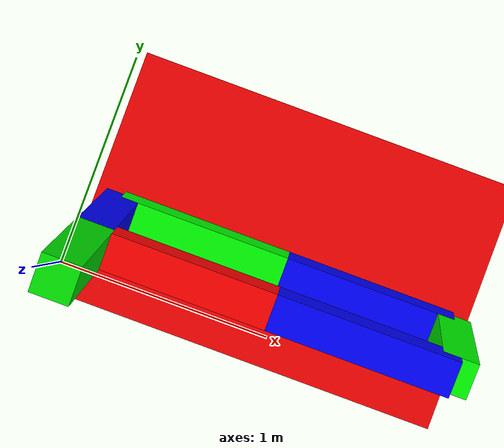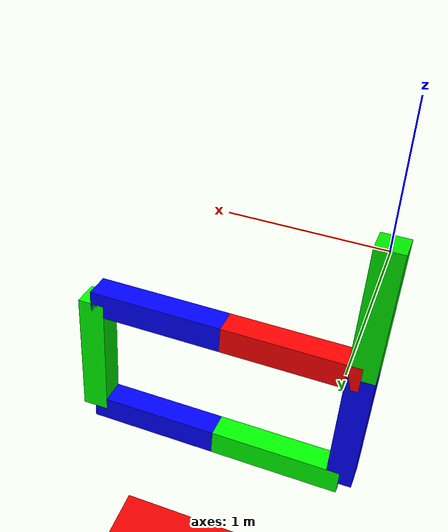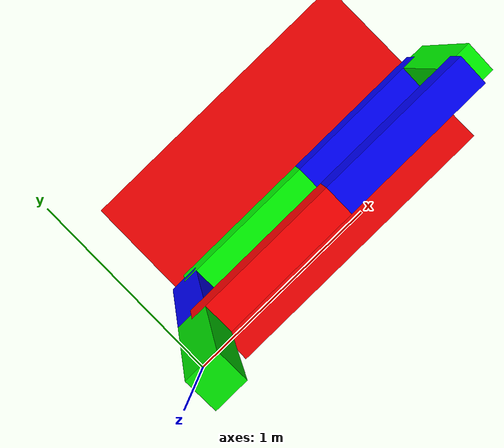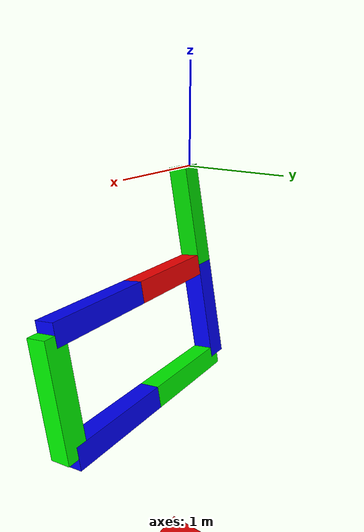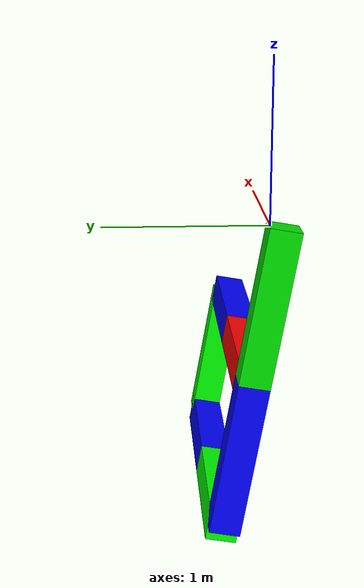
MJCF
<mujoco>
    <option timestep="0.001" integrator="RK4">
		<flag gravity="enable" contact="disable"/>
	</option>
    <worldbody>
        <light diffuse=".5 .5 .5" pos="0 0 3" dir="0 0 -1"/>
        <geom type="plane" pos="0 0 -5" size="3 3 0.1" rgba=".9 0 0 1"/>
        <body name="body0" pos="0 0 -0.5" euler="10 0 0">
            <joint name="joint0" type="ball" pos="0 0 0.5"/>
            <geom name="box0" type="box" size="0.1 0.1 0.5" rgba="0 .9 0 1" mass="1"/>
            <body name="body1" pos="0 0 -1" euler="0 0 0">
                <joint name="joint1" type="ball" pos="0 0 0.5"/>
                <geom name="box1" type="box" size="0.1 0.1 0.5" rgba="0 0 1 1" mass="1"/>
                <body name="body2" pos="0.5 0 -0.5" euler="0 -90 0">
                    <joint name="joint2" type="ball" pos="0 0 0.5"/>
                    <geom name="box2" type="box" size="0.1 0.1 0.5" rgba="0 1 0 1" mass="1"/>
                    <body name="body3" pos="0 0 -1" euler="0 0 0">
                        <joint name="joint3" type="ball" pos="0 0 0.5"/>
                        <geom name="box3" type="box" size="0.1 0.1 0.5" rgba="0 0 1 1" mass="1"/>
                        <body name="body4" pos="0.5 0 -0.5" euler="0 -90 0">
                            <joint name="joint4" type="ball" pos="0 0 0.5"/>
                            <geom name="box4" type="box" size="0.1 0.1 0.5" rgba="0 1 0 1" mass="1"/>
                            <body name="body5" pos="0.5 0 -0.5" euler="0 -90 0">
                                <joint name="joint5" type="ball" pos="0 0 0.5"/>
                                <geom name="box5" type="box" size="0.1 0.1 0.5" rgba="0 0 1 1" mass="1"/>
                                <body name="body6" pos="0 0 -1" euler="0 0 0">
                                    <joint name="joint6" type="ball" pos="0 0 0.5"/>
                                    <geom name="box6" type="box" size="0.1 0.1 0.5" rgba="1 0 0 1" mass="1"/>
                                </body>
                            </body>
                        </body>
                    </body>
                </body>
            </body>
        </body>
    </worldbody>
    <equality>
        <connect  body1="body0" body2="body6" anchor="0 0 -0.5"/>
    </equality>
</mujoco>
